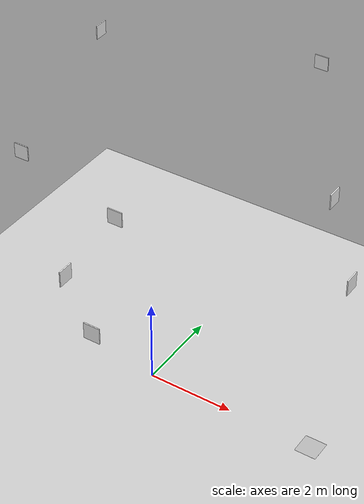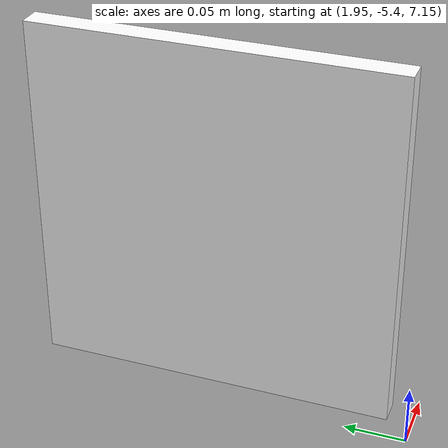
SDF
<sdf version="1.6">
 <world name="default">
  <include><uri>model://ground_plane</uri></include>
  <include><uri>model://sun</uri></include>
  <include><uri>model://color_beacon</uri><pose>4 0 0 0 0 0</pose></include>
  <include><uri>model://posAprilTags</uri></include>
 </world>
</sdf>

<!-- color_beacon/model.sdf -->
<sdf version='1.4'>
  <model name='color_beacon'>
    <link name='base_link'>
      <collision name='collision'>
        <geometry>
					<box>
						<size>0.5 0.5 0.01</size>
					</box>
				</geometry>
      </collision>

      <visual name='visual_0'>
        <pose>0 0 0.01 0 0 0</pose>

        <cast_shadows>false</cast_shadows>
        <geometry>
          <plane>
            <normal>0 0 1</normal>
            <size>0.5 0.5</size>
          </plane>
        </geometry>
        <material>
          <script>
            <uri>model://color_beacon/materials/scripts</uri>
            <uri>model://color_beacon/materials/textures</uri>
            <name>vrc/color_beacon</name>
          </script>
        </material>
      </visual>
    </link>
  </model>
</sdf>

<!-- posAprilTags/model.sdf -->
<sdf version="1.9">
  <model name="posAprilTags">

    <!-- fridge -->
    <model name="tag_0">
      <pose>1.75 -3.535 7.3 1.57079 1.57079 0</pose>
      <static>true</static>
      <link name="link">
        <visual name="visual">
          <geometry>
            <box>
              <size>0.3 0.3 0.02</size>
            </box>
          </geometry>
          <material>
            <diffuse>1 1 1 1</diffuse>
            <specular>0.4 0.4 0.4 1</specular>
            <pbr>
              <metal>
                <albedo_map>materials/textures/tag36_11_00000.png</albedo_map>
                <double_sided>true</double_sided>
              </metal>
            </pbr>
          </material>
        </visual>
      </link>
    </model>

    <!-- back glass door -->
    <model name="tag_1">
      <pose>2.2 2.835 7.3 1.57079 1.57079 0</pose>
      <static>true</static>
      <link name="link">
        <visual name="visual">
          <geometry>
            <box>
              <size>0.3 0.3 0.02</size>
            </box>
          </geometry>
          <material>
            <diffuse>1 1 1 1</diffuse>
            <specular>0.4 0.4 0.4 1</specular>
            <pbr>
              <metal>
                <albedo_map>materials/textures/tag36_11_00001.png</albedo_map>
                <double_sided>true</double_sided>
              </metal>
            </pbr>
          </material>
        </visual>
      </link>
    </model>

    <!-- window -->
    <model name="tag_2">
      <pose>5.935 -2.89 7.3 0 1.57079 0</pose>
      <static>true</static>
      <link name="link">
        <visual name="visual">
          <geometry>
            <box>
              <size>0.3 0.3 0.02</size>
            </box>
          </geometry>
          <material>
            <diffuse>1 1 1 1</diffuse>
            <specular>0.4 0.4 0.4 1</specular>
            <pbr>
              <metal>
                <albedo_map>materials/textures/tag36_11_00002.png</albedo_map>
                <double_sided>true</double_sided>
              </metal>
            </pbr>
          </material>
        </visual>
      </link>
    </model>

    <!-- kitchen -->
    <model name="tag_3">
      <pose>3.17 -6.14 7.3 1.57079 1.57079 0</pose>
      <static>true</static>
      <link name="link">
        <visual name="visual">
          <geometry>
            <box>
              <size>0.3 0.3 0.02</size>
            </box>
          </geometry>
          <material>
            <diffuse>1 1 1 1</diffuse>
            <specular>0.4 0.4 0.4 1</specular>
            <pbr>
              <metal>
                <albedo_map>materials/textures/tag36_11_00003.png</albedo_map>
                <double_sided>true</double_sided>
              </metal>
            </pbr>
          </material>
        </visual>
      </link>
    </model>

    <!-- back door -->
    <model name="tag_4">
      <pose>-2.18 1.5 7.3 0 1.57079 0</pose>
      <static>true</static>
      <link name="link">
        <visual name="visual">
          <geometry>
            <box>
              <size>0.3 0.3 0.02</size>
            </box>
          </geometry>
          <material>
            <diffuse>1 1 1 1</diffuse>
            <specular>0.4 0.4 0.4 1</specular>
            <pbr>
              <metal>
                <albedo_map>materials/textures/tag36_11_00004.png</albedo_map>
                <double_sided>true</double_sided>
              </metal>
            </pbr>
          </material>
        </visual>
      </link>
    </model>

    <!-- piano -->
    <model name="tag_5">
      <pose>4.59 -1 7.3 0 1.57079 0</pose>
      <static>true</static>
      <link name="link">
        <visual name="visual">
          <geometry>
            <box>
              <size>0.3 0.3 0.02</size>
            </box>
          </geometry>
          <material>
            <diffuse>1 1 1 1</diffuse>
            <specular>0.4 0.4 0.4 1</specular>
            <pbr>
              <metal>
                <albedo_map>materials/textures/tag36_11_00005.png</albedo_map>
                <double_sided>true</double_sided>
              </metal>
            </pbr>
          </material>
        </visual>
      </link>
    </model>

    <!-- front door -->
    <model name="tag_6">
      <pose>-0.8 -2.85 7.3 1.57079 1.57079 0</pose>
      <static>true</static>
      <link name="link">
        <visual name="visual">
          <geometry>
            <box>
              <size>0.3 0.3 0.02</size>
            </box>
          </geometry>
          <material>
            <diffuse>1 1 1 1</diffuse>
            <specular>0.4 0.4 0.4 1</specular>
            <pbr>
              <metal>
                <albedo_map>materials/textures/tag36_11_00006.png</albedo_map>
                <double_sided>true</double_sided>
              </metal>
            </pbr>
          </material>
        </visual>
      </link>
    </model>

    <model name="tag_7">
      <pose>1.98 -5.23 7.3 0 1.57079 0</pose>
      <static>true</static>
      <link name="link">
        <visual name="visual">
          <geometry>
            <box>
              <size>0.3 0.3 0.02</size>
            </box>
          </geometry>
          <material>
            <diffuse>1 1 1 1</diffuse>
            <specular>0.4 0.4 0.4 1</specular>
            <pbr>
              <metal>
                <albedo_map>materials/textures/tag36_11_00007.png</albedo_map>
                <double_sided>true</double_sided>
              </metal>
            </pbr>
          </material>
        </visual>
      </link>
    </model>

  </model>
</sdf>
